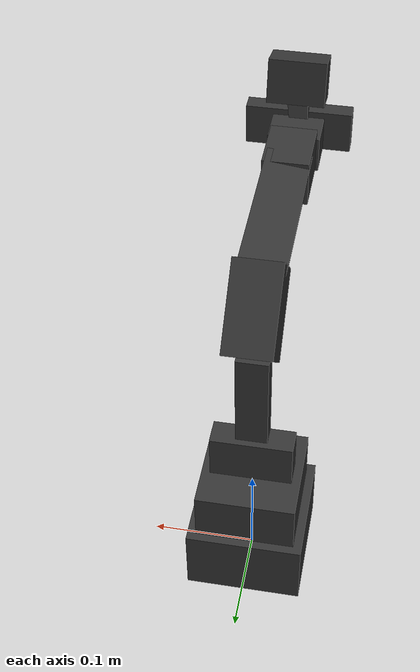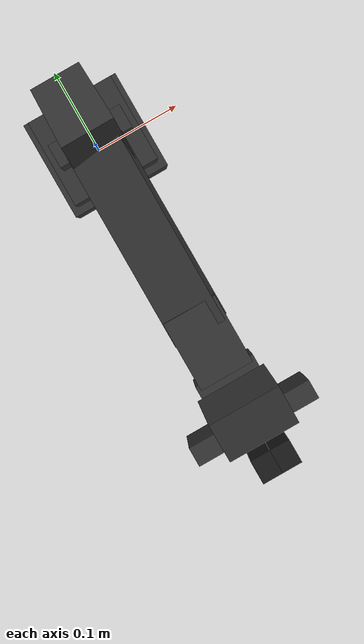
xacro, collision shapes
<?xml version="1.0" encoding="utf-8"?>
<robot xmlns:xacro="http://www.ros.org/wiki/xacro" name="nexarm">

  <xacro:macro name="nexarm" params="prefix:='' parent:='' *origin attach_cam_mount:=true mesh_dir:='package://nexarm_description/meshes/visual'">
    <!-- Base attachment if parent link is provided -->
    <xacro:if value="${parent != ''}">
      <joint name="${prefix}base_mount_joint" type="fixed">
        <parent link="${parent}"/>
        <child link="${prefix}base_link"/>
        <xacro:insert_block name="origin"/>
      </joint>
    </xacro:if>

    <!-- Materials -->
    <material name="${prefix}dark_grey">
      <color rgba="0.2 0.2 0.2 1.0"/>
    </material>
    <material name="${prefix}black">
      <color rgba="0.1 0.1 0.1 1.0"/>
    </material>
    <material name="${prefix}metal_accent">
      <color rgba="0.6 0.6 0.6 1.0"/>
    </material>

    <!-- Base Link -->
    <link name="${prefix}base_link">
      <inertial>
        <origin xyz="1.02799772e-05 0.000536543393 0.0187781864" rpy="0 0 0"/>
        <mass value="0.307643"/>
        <inertia ixx="5.498090e-04" ixy="1.626228e-07" ixz="-6.868540e-09" iyy="5.570952e-04" iyz="7.496669e-06" izz="7.322669e-04"/>
      </inertial>
      <visual>
        <origin xyz="-0.539369 -0.0639728 0" rpy="0 0 0"/>
        <geometry>
          <mesh filename="${mesh_dir}/base_link.stl" scale="0.001 0.001 0.001"/>
        </geometry>
        <material name="${prefix}dark_grey"/>
      </visual>
      <collision name="base_link_collision_0">
        <origin xyz="0 0 0.03" rpy="0 0 0"/>
        <geometry>
          <box size="0.11135 0.11135 0.070006"/>
        </geometry>
      </collision>
    </link>

    <!-- Joint 1: Base to Link 1 (Shoulder Pan) -->
    <joint name="${prefix}joint_1_base_to_link_1" type="revolute">
      <parent link="${prefix}base_link"/>
      <child link="${prefix}link_1"/>
      <origin xyz="0 0 0.049" rpy="0 0 0"/>
      <axis xyz="0 0 -1"/>
      <limit lower="-2.35619" upper="2.35619" effort="5.0" velocity="3.14"/>
      <dynamics damping="0.533" friction="0.052"/>
    </joint>

    <!-- Link 1 -->
    <link name="${prefix}link_1">
      <inertial>
        <origin xyz="2.41148736e-05 -0.000456853793 0.0227804084" rpy="0 0 0"/>
        <mass value="0.28384"/>
        <inertia ixx="2.032788e-04" ixy="6.009257e-07" ixz="2.280297e-07" iyy="2.487346e-04" iyz="1.981360e-06" izz="2.474501e-04"/>
      </inertial>
      <visual>
        <origin xyz="-0.539369 -0.0639728 -0.049" rpy="0 0 0"/>
        <geometry>
          <mesh filename="${mesh_dir}/link_1.stl" scale="0.001 0.001 0.001"/>
        </geometry>
        <material name="${prefix}dark_grey"/>
      </visual>
      <collision name="link_1_collision_0">
        <origin xyz="0 0 0.031028" rpy="0 0 0"/>
        <geometry>
          <box size="0.094976 0.09498 0.073056"/>
        </geometry>
      </collision>
    </link>

    <!-- Joint 2: Link 1 to Link 2 (Shoulder Lift) -->
    <joint name="${prefix}joint_2_link_1_to_link_2" type="revolute">
      <parent link="${prefix}link_1"/>
      <child link="${prefix}link_2"/>
      <origin xyz="0.0351 0 0.057445" rpy="0 0 0"/>
      <axis xyz="-1 0 0"/>
      <limit lower="-2.0944" upper="2.0944" effort="5.0" velocity="3.14"/>
      <dynamics damping="1.156" friction="0.052"/>
    </joint>

    <!-- Link 2 -->
    <link name="${prefix}link_2">
      <inertial>
        <origin xyz="-0.035099976 -0.000889224108 0.114660065" rpy="0 0 0"/>
        <mass value="0.192568"/>
        <inertia ixx="8.608103e-04" ixy="-2.307043e-13" ixz="3.712060e-12" iyy="8.918344e-04" iyz="-1.917386e-05" izz="5.946522e-05"/>
      </inertial>
      <visual>
        <origin xyz="-0.574469 -0.0639728 -0.106445" rpy="0 0 0"/>
        <geometry>
          <mesh filename="${mesh_dir}/link_2.stl" scale="0.001 0.001 0.001"/>
        </geometry>
        <material name="${prefix}dark_grey"/>
      </visual>
      <collision name="link_2_collision_0">
        <origin xyz="-0.0351 0 0.023153" rpy="1.5708 0 0"/>
        <geometry>
          <box size="0.07856 0.066306 0.024724"/>
        </geometry>
      </collision>
      <collision name="link_2_collision_1">
        <origin xyz="-0.0351 0 0.112044" rpy="0 -1.5708 -1.5708"/>
        <geometry>
          <box size="0.102272 0.030098 0.019598"/>
        </geometry>
      </collision>
      <collision name="link_2_collision_2">
        <origin xyz="-0.035161 -0.010742 0.207117" rpy="-0.00431 -0.768106 -1.56459"/>
        <geometry>
          <box size="0.082686 0.044746 0.058278"/>
        </geometry>
      </collision>
    </link>

    <!-- Joint 3: Link 2 to Link 3 (Elbow Flex) -->
    <joint name="${prefix}joint_3_link_2_to_link_3" type="revolute">
      <parent link="${prefix}link_2"/>
      <child link="${prefix}link_3"/>
      <origin xyz="-0.05503 -0.036797 0.225029" rpy="0 0 0"/>
      <axis xyz="1 0 0"/>
      <limit lower="-2.35619" upper="2.35619" effort="5.0" velocity="3.14"/>
      <dynamics damping="0.533" friction="0.052"/>
    </joint>

    <!-- Link 3 -->
    <link name="${prefix}link_3">
      <inertial>
        <origin xyz="0.0188380115 -0.0701267469 1.12946518e-05" rpy="0 0 0"/>
        <mass value="0.196103"/>
        <inertia ixx="5.809189e-04" ixy="6.642977e-07" ixz="-5.446095e-08" iyy="2.711611e-05" iyz="8.987228e-07" izz="5.866832e-04"/>
      </inertial>
      <visual>
        <origin xyz="-0.519439 -0.027175 -0.331474" rpy="0 0 0"/>
        <geometry>
          <mesh filename="${mesh_dir}/link_3.stl" scale="0.001 0.001 0.001"/>
        </geometry>
        <material name="${prefix}dark_grey"/>
      </visual>
      <collision name="link_3_collision_0">
        <origin xyz="0.020541 -0.072398 4.5e-05" rpy="-0.122828 0 1.5708"/>
        <geometry>
          <box size="0.165242 0.043018 0.034806"/>
        </geometry>
      </collision>
    </link>

    <!-- Joint 4: Link 3 to Link 4 (Wrist Flex) -->
    <joint name="${prefix}joint_4_link_3_to_link_4" type="revolute">
      <parent link="${prefix}link_3"/>
      <child link="${prefix}link_4"/>
      <origin xyz="-0.00032 -0.144999 -0.000188" rpy="0 0 0"/>
      <axis xyz="1 0 0"/>
      <limit lower="-1.74533" upper="1.74533" effort="5.0" velocity="3.14"/>
      <dynamics damping="0.533" friction="0.052"/>
    </joint>

    <!-- Link 4 -->
    <link name="${prefix}link_4">
      <inertial>
        <origin xyz="0.0201144972 -0.027193313 -0.00531575039" rpy="0 0 0"/>
        <mass value="0.0554609"/>
        <inertia ixx="1.863340e-05" ixy="-1.262205e-07" ixz="4.816249e-09" iyy="1.670002e-05" iyz="1.604208e-06" izz="2.290469e-05"/>
      </inertial>
      <visual>
        <origin xyz="-0.519119 0.117823 -0.331287" rpy="0 0 0"/>
        <geometry>
          <mesh filename="${mesh_dir}/link_4.stl" scale="0.001 0.001 0.001"/>
        </geometry>
        <material name="${prefix}dark_grey"/>
      </visual>
      <collision name="link_4_collision_0">
        <origin xyz="0.020252 -0.018525 -0.003339" rpy="0 0 0"/>
        <geometry>
          <box size="0.044508 0.057238 0.045482"/>
        </geometry>
      </collision>
    </link>

    <!-- Joint 5: Link 4 to Link 5 (Wrist Roll) -->
    <joint name="${prefix}joint_5_link_4_to_link_5" type="revolute">
      <parent link="${prefix}link_4"/>
      <child link="${prefix}link_5"/>
      <origin xyz="0.02025 -0.047234 4.3e-05" rpy="0 0 0"/>
      <axis xyz="0 -1 0.000548"/>
      <limit lower="-3.14159" upper="3.14159" effort="5.0" velocity="3.14"/>
      <dynamics damping="0.225" friction="0.052"/>
    </joint>

    <!-- Link 5 -->
    <link name="${prefix}link_5">
      <inertial>
        <origin xyz="-5.7677464e-05 -0.0194454844 -0.005211788" rpy="0 0 0"/>
        <mass value="0.0449343"/>
        <inertia ixx="9.635606e-06" ixy="-4.247220e-09" ixz="3.251408e-08" iyy="9.110348e-06" iyz="6.083407e-07" izz="9.762553e-06"/>
      </inertial>
      <visual>
        <origin xyz="-0.539369 0.165057 -0.33133" rpy="0 0 0"/>
        <geometry>
          <mesh filename="${mesh_dir}/link_5.stl" scale="0.001 0.001 0.001"/>
        </geometry>
        <material name="${prefix}dark_grey"/>
      </visual>
      <collision name="link_5_collision_0">
        <origin xyz="1.4e-05 -0.017273 -0.008315" rpy="0 0 0"/>
        <geometry>
          <box size="0.050306 0.040536 0.035592"/>
        </geometry>
      </collision>
    </link>

    <!-- Gripper Base -->
    <joint name="${prefix}joint_5_to_gripper_fixed" type="fixed">
      <parent link="${prefix}link_5"/>
      <child link="${prefix}link_6_gripper_base"/>
      <origin xyz="0 0 0" rpy="0 0 0"/>
    </joint>

    <link name="${prefix}link_6_gripper_base">
      <inertial>
        <origin xyz="1.4875552e-05 -0.0392045753 0.000149826622" rpy="0 0 0"/>
        <mass value="0.0304143"/>
        <inertia ixx="3.453790e-06" ixy="6.237030e-09" ixz="-1.323944e-09" iyy="3.877610e-05" iyz="-3.051585e-08" izz="3.645799e-05"/>
      </inertial>
      <visual>
        <origin xyz="-0.539369 0.165057 -0.33133" rpy="0 0 0"/>
        <geometry>
          <mesh filename="${mesh_dir}/link_6_gripper_base.stl" scale="0.001 0.001 0.001"/>
        </geometry>
        <material name="${prefix}dark_grey"/>
      </visual>
      <collision name="link_6_gripper_base_collision_0">
        <origin xyz="1e-06 -0.041559 -0.005211" rpy="-0.000548 0 0"/>
        <geometry>
          <box size="0.104 0.016 0.042"/>
        </geometry>
      </collision>
    </link>

    <!-- Tool centre point: the MJCF gripper_frame site (sim/isaac_lab/build_isaac_assets.py) -->
    <link name="${prefix}gripper_frame"/>
    <joint name="${prefix}gripper_frame_joint" type="fixed">
      <parent link="${prefix}link_6_gripper_base"/>
      <child link="${prefix}gripper_frame"/>
      <origin xyz="-0.000369 -0.108286 -0.000364" rpy="0 0 0"/>
    </joint>

    <!-- Pinion Gear -->
    <joint name="${prefix}gripper_pinion_joint" type="revolute">
      <parent link="${prefix}link_6_gripper_base"/>
      <child link="${prefix}link_6_pinion_gear"/>
      <origin xyz="0 -0.03994 3.5e-05" rpy="0 0 0"/>
      <axis xyz="0 -0.000548 -1"/>
      <limit lower="-3.14159" upper="3.14159" effort="5.0" velocity="3.14"/>
      <dynamics damping="0.08" friction="0.04"/>
    </joint>

    <link name="${prefix}link_6_pinion_gear">
      <inertial>
        <origin xyz="1.47125783e-05 0.00206091688 -4.78289993e-05" rpy="0 0 0"/>
        <mass value="0.00313494"/>
        <inertia ixx="7.668498e-08" ixy="1.174640e-11" ixz="5.084377e-16" iyy="1.431190e-07" iyz="-3.183249e-12" izz="7.668498e-08"/>
      </inertial>
      <visual>
        <origin xyz="-0.539369 0.204997 -0.331365" rpy="0 0 0"/>
        <geometry>
          <mesh filename="${mesh_dir}/link_6_pinion_gear.stl" scale="0.001 0.001 0.001"/>
        </geometry>
        <material name="${prefix}metal_accent"/>
      </visual>
    </link>

    <!-- Left Jaw (Mimic) -->
    <joint name="${prefix}left_jaw_slide_joint" type="prismatic">
      <parent link="${prefix}link_6_gripper_base"/>
      <child link="${prefix}link_6_left_jaw"/>
      <origin xyz="0 -0.046232 3.8e-05" rpy="0 0 0"/>
      <axis xyz="-1 0 0"/>
      <limit lower="0" upper="0.0255" effort="5.0" velocity="3.14"/>
      <mimic joint="${prefix}right_jaw_slide_joint" multiplier="1" offset="0"/>
      <dynamics damping="965" friction="2.56"/>
    </joint>

    <link name="${prefix}link_6_left_jaw">
      <inertial>
        <origin xyz="-0.00995268442 -0.0113778227 -0.00071474072" rpy="0 0 0"/>
        <mass value="0.0429566"/>
        <inertia ixx="8.791444e-06" ixy="-7.462964e-07" ixz="-2.699997e-07" iyy="5.542263e-06" iyz="-5.317703e-07" izz="8.695677e-06"/>
      </inertial>
      <visual>
        <origin xyz="-0.539369 0.211289 -0.331368" rpy="0 0 0"/>
        <geometry>
          <mesh filename="${mesh_dir}/link_6_left_jaw.stl" scale="0.001 0.001 0.001"/>
        </geometry>
        <material name="${prefix}black"/>
      </visual>
      <collision name="link_6_left_jaw_collision_0">
        <origin xyz="-0.008379 -0.029054 2e-05" rpy="-0.000548 0 0"/>
        <geometry>
          <box size="0.0168 0.02 0.03"/>
        </geometry>
      </collision>
    </link>

    <!-- Right Jaw -->
    <joint name="${prefix}right_jaw_slide_joint" type="prismatic">
      <parent link="${prefix}link_6_gripper_base"/>
      <child link="${prefix}link_6_right_jaw"/>
      <origin xyz="0 -0.046232 3.8e-05" rpy="0 0 0"/>
      <axis xyz="1 0 0"/>
      <limit lower="0" upper="0.0255" effort="5.0" velocity="3.14"/>
      <dynamics damping="965" friction="2.56"/>
    </joint>

    <link name="${prefix}link_6_right_jaw">
      <inertial>
        <origin xyz="0.00998909129 -0.0113743594 0.00060762641" rpy="0 0 0"/>
        <mass value="0.0429566"/>
        <inertia ixx="8.792174e-06" ixy="7.451729e-07" ixz="-2.706260e-07" iyy="5.542041e-06" iyz="5.302655e-07" izz="8.695575e-06"/>
      </inertial>
      <visual>
        <origin xyz="-0.539369 0.211289 -0.331368" rpy="0 0 0"/>
        <geometry>
          <mesh filename="${mesh_dir}/link_6_right_jaw.stl" scale="0.001 0.001 0.001"/>
        </geometry>
        <material name="${prefix}black"/>
      </visual>
      <collision name="link_6_right_jaw_collision_0">
        <origin xyz="0.008371 -0.029054 2e-05" rpy="-0.000548 0 0"/>
        <geometry>
          <box size="0.0168 0.02 0.03"/>
        </geometry>
      </collision>
    </link>

    <!-- Optional Camera Mount -->
    <xacro:if value="${attach_cam_mount}">
      <joint name="${prefix}joint_5_to_cam_fixed" type="fixed">
        <parent link="${prefix}link_5"/>
        <child link="${prefix}cam_mount"/>
        <origin xyz="0 0 0" rpy="0 0 0"/>
      </joint>

      <link name="${prefix}cam_mount">
        <inertial>
          <origin xyz="1.52846825e-05 -0.0208425974 0.0553600813" rpy="0 0 0"/>
          <mass value="0.0999996"/>
          <inertia ixx="3.482002e-05" ixy="6.836185e-10" ixz="-2.890032e-10" iyy="3.731782e-05" iyz="6.007577e-06" izz="1.562260e-05"/>
        </inertial>
        <visual>
          <origin xyz="-0.539369 0.165057 -0.33133" rpy="0 0 0"/>
          <geometry>
            <mesh filename="${mesh_dir}/cam_mount.stl" scale="0.001 0.001 0.001"/>
          </geometry>
          <material name="${prefix}dark_grey"/>
        </visual>
        <collision name="cam_mount_collision_0">
          <origin xyz="1.6e-05 -0.021852 0.059609" rpy="-1.57075 -0.263071 1.57096"/>
          <geometry>
            <box size="0.032062 0.041502 0.055"/>
          </geometry>
        </collision>
        <collision name="cam_mount_collision_1">
          <origin xyz="1.6e-05 -0.031343 0.02105" rpy="8e-05 1.14717 -1.57071"/>
          <geometry>
            <box size="0.041184 0.019002 0.011266"/>
          </geometry>
        </collision>
      </link>
    </xacro:if>

  </xacro:macro>

  <!-- Default standalone instantiation -->
  <xacro:arg name="mesh_dir" default="package://nexarm_description/meshes/visual"/>
  <xacro:arg name="attach_cam_mount" default="true"/>

  <xacro:nexarm mesh_dir="$(arg mesh_dir)" attach_cam_mount="$(arg attach_cam_mount)">
    <origin xyz="0 0 0" rpy="0 0 0"/>
  </xacro:nexarm>

</robot>
